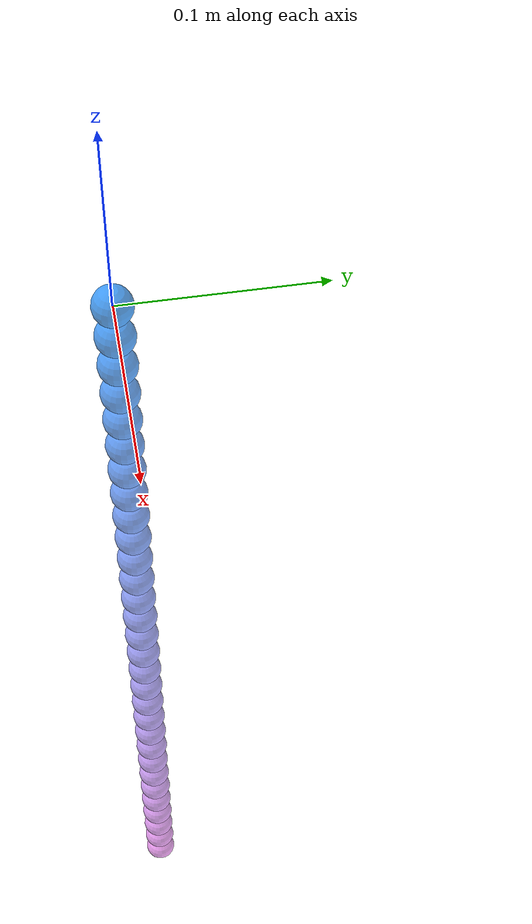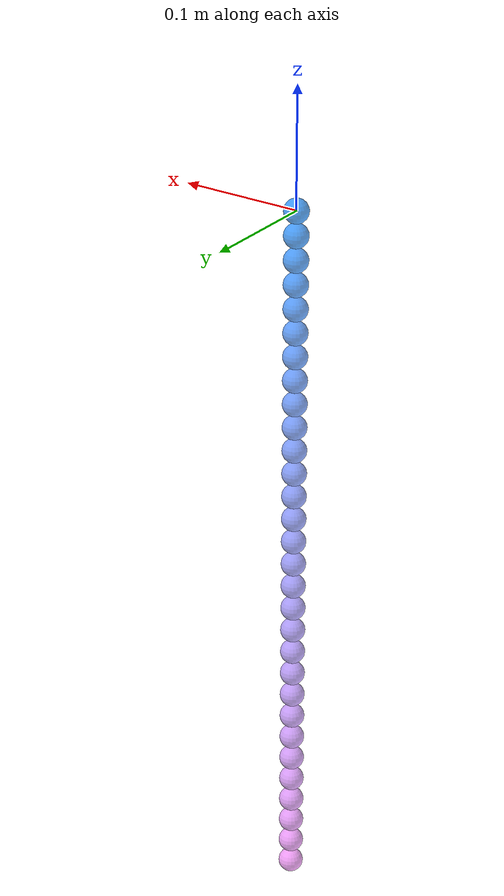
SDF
# This sdf file is auto-generated.
# Manual modification is not recommended.
<sdf version='1.6'>
  <model name='rope'>

  <link name='link_000'>
  <pose> 0 0 0.000000 0 0 0 </pose>
  <inertial>
     <mass> 0.001000 </mass>
     <inertia>
       <ixx>0.000000</ixx>
       <iyy>0.000000</iyy>
       <izz>0.000000</izz>
       <ixy>0.000000</ixy>
       <iyz>0.000000</iyz>
       <ixz>0.000000</ixz>
     </inertia>
  </inertial>

  <visual name='link_000_1'>
  <pose> 0 0 0 0 0 0 </pose>
  <geometry>
    <sphere>
       <radius>0.010000</radius>
    </sphere>
  </geometry>
  <material>
    <diffuse>0.000000 0.5 1.0 0.7</diffuse>
  </material>
  </visual>

  <collision name='collision_000'>
  <pose> 0 0 0 0 0 0 </pose>
  <geometry>
    <sphere>
       <radius>0.009000</radius>
    </sphere>
  </geometry>
  <surface>
    <friction>
      <ode>
        <mu>0.800000</mu>
        <mu2>0.800000</mu2>
      </ode>
    </friction>
  </surface>
  </collision>
  </link>

  <link name='link_001'>
  <pose> 0 0 -0.020000 0 0 0 </pose>
  <inertial>
     <mass> 0.001000 </mass>
     <inertia>
       <ixx>0.000000</ixx>
       <iyy>0.000000</iyy>
       <izz>0.000000</izz>
       <ixy>0.000000</ixy>
       <iyz>0.000000</iyz>
       <ixz>0.000000</ixz>
     </inertia>
  </inertial>

  <visual name='link_001_1'>
  <pose> 0 0 0 0 0 0 </pose>
  <geometry>
    <sphere>
       <radius>0.010000</radius>
    </sphere>
  </geometry>
  <material>
    <diffuse>0.033333 0.5 1.0 0.7</diffuse>
  </material>
  </visual>

  <collision name='collision_001'>
  <pose> 0 0 0 0 0 0 </pose>
  <geometry>
    <sphere>
       <radius>0.009000</radius>
    </sphere>
  </geometry>
  <surface>
    <friction>
      <ode>
        <mu>0.800000</mu>
        <mu2>0.800000</mu2>
      </ode>
    </friction>
  </surface>
  </collision>
  </link>

  <link name='link_002'>
  <pose> 0 0 -0.040000 0 0 0 </pose>
  <inertial>
     <mass> 0.001000 </mass>
     <inertia>
       <ixx>0.000000</ixx>
       <iyy>0.000000</iyy>
       <izz>0.000000</izz>
       <ixy>0.000000</ixy>
       <iyz>0.000000</iyz>
       <ixz>0.000000</ixz>
     </inertia>
  </inertial>

  <visual name='link_002_1'>
  <pose> 0 0 0 0 0 0 </pose>
  <geometry>
    <sphere>
       <radius>0.010000</radius>
    </sphere>
  </geometry>
  <material>
    <diffuse>0.066667 0.5 1.0 0.7</diffuse>
  </material>
  </visual>

  <collision name='collision_002'>
  <pose> 0 0 0 0 0 0 </pose>
  <geometry>
    <sphere>
       <radius>0.009000</radius>
    </sphere>
  </geometry>
  <surface>
    <friction>
      <ode>
        <mu>0.800000</mu>
        <mu2>0.800000</mu2>
      </ode>
    </friction>
  </surface>
  </collision>
  </link>

  <link name='link_003'>
  <pose> 0 0 -0.060000 0 0 0 </pose>
  <inertial>
     <mass> 0.001000 </mass>
     <inertia>
       <ixx>0.000000</ixx>
       <iyy>0.000000</iyy>
       <izz>0.000000</izz>
       <ixy>0.000000</ixy>
       <iyz>0.000000</iyz>
       <ixz>0.000000</ixz>
     </inertia>
  </inertial>

  <visual name='link_003_1'>
  <pose> 0 0 0 0 0 0 </pose>
  <geometry>
    <sphere>
       <radius>0.010000</radius>
    </sphere>
  </geometry>
  <material>
    <diffuse>0.100000 0.5 1.0 0.7</diffuse>
  </material>
  </visual>

  <collision name='collision_003'>
  <pose> 0 0 0 0 0 0 </pose>
  <geometry>
    <sphere>
       <radius>0.009000</radius>
    </sphere>
  </geometry>
  <surface>
    <friction>
      <ode>
        <mu>0.800000</mu>
        <mu2>0.800000</mu2>
      </ode>
    </friction>
  </surface>
  </collision>
  </link>

  <link name='link_004'>
  <pose> 0 0 -0.080000 0 0 0 </pose>
  <inertial>
     <mass> 0.001000 </mass>
     <inertia>
       <ixx>0.000000</ixx>
       <iyy>0.000000</iyy>
       <izz>0.000000</izz>
       <ixy>0.000000</ixy>
       <iyz>0.000000</iyz>
       <ixz>0.000000</ixz>
     </inertia>
  </inertial>

  <visual name='link_004_1'>
  <pose> 0 0 0 0 0 0 </pose>
  <geometry>
    <sphere>
       <radius>0.010000</radius>
    </sphere>
  </geometry>
  <material>
    <diffuse>0.133333 0.5 1.0 0.7</diffuse>
  </material>
  </visual>

  <collision name='collision_004'>
  <pose> 0 0 0 0 0 0 </pose>
  <geometry>
    <sphere>
       <radius>0.009000</radius>
    </sphere>
  </geometry>
  <surface>
    <friction>
      <ode>
        <mu>0.800000</mu>
        <mu2>0.800000</mu2>
      </ode>
    </friction>
  </surface>
  </collision>
  </link>

  <link name='link_005'>
  <pose> 0 0 -0.100000 0 0 0 </pose>
  <inertial>
     <mass> 0.001000 </mass>
     <inertia>
       <ixx>0.000000</ixx>
       <iyy>0.000000</iyy>
       <izz>0.000000</izz>
       <ixy>0.000000</ixy>
       <iyz>0.000000</iyz>
       <ixz>0.000000</ixz>
     </inertia>
  </inertial>

  <visual name='link_005_1'>
  <pose> 0 0 0 0 0 0 </pose>
  <geometry>
    <sphere>
       <radius>0.010000</radius>
    </sphere>
  </geometry>
  <material>
    <diffuse>0.166667 0.5 1.0 0.7</diffuse>
  </material>
  </visual>

  <collision name='collision_005'>
  <pose> 0 0 0 0 0 0 </pose>
  <geometry>
    <sphere>
       <radius>0.009000</radius>
    </sphere>
  </geometry>
  <surface>
    <friction>
      <ode>
        <mu>0.800000</mu>
        <mu2>0.800000</mu2>
      </ode>
    </friction>
  </surface>
  </collision>
  </link>

  <link name='link_006'>
  <pose> 0 0 -0.120000 0 0 0 </pose>
  <inertial>
     <mass> 0.001000 </mass>
     <inertia>
       <ixx>0.000000</ixx>
       <iyy>0.000000</iyy>
       <izz>0.000000</izz>
       <ixy>0.000000</ixy>
       <iyz>0.000000</iyz>
       <ixz>0.000000</ixz>
     </inertia>
  </inertial>

  <visual name='link_006_1'>
  <pose> 0 0 0 0 0 0 </pose>
  <geometry>
    <sphere>
       <radius>0.010000</radius>
    </sphere>
  </geometry>
  <material>
    <diffuse>0.200000 0.5 1.0 0.7</diffuse>
  </material>
  </visual>

  <collision name='collision_006'>
  <pose> 0 0 0 0 0 0 </pose>
  <geometry>
    <sphere>
       <radius>0.009000</radius>
    </sphere>
  </geometry>
  <surface>
    <friction>
      <ode>
        <mu>0.800000</mu>
        <mu2>0.800000</mu2>
      </ode>
    </friction>
  </surface>
  </collision>
  </link>

  <link name='link_007'>
  <pose> 0 0 -0.140000 0 0 0 </pose>
  <inertial>
     <mass> 0.001000 </mass>
     <inertia>
       <ixx>0.000000</ixx>
       <iyy>0.000000</iyy>
       <izz>0.000000</izz>
       <ixy>0.000000</ixy>
       <iyz>0.000000</iyz>
       <ixz>0.000000</ixz>
     </inertia>
  </inertial>

  <visual name='link_007_1'>
  <pose> 0 0 0 0 0 0 </pose>
  <geometry>
    <sphere>
       <radius>0.010000</radius>
    </sphere>
  </geometry>
  <material>
    <diffuse>0.233333 0.5 1.0 0.7</diffuse>
  </material>
  </visual>

  <collision name='collision_007'>
  <pose> 0 0 0 0 0 0 </pose>
  <geometry>
    <sphere>
       <radius>0.009000</radius>
    </sphere>
  </geometry>
  <surface>
    <friction>
      <ode>
        <mu>0.800000</mu>
        <mu2>0.800000</mu2>
      </ode>
    </friction>
  </surface>
  </collision>
  </link>

  <link name='link_008'>
  <pose> 0 0 -0.160000 0 0 0 </pose>
  <inertial>
     <mass> 0.001000 </mass>
     <inertia>
       <ixx>0.000000</ixx>
       <iyy>0.000000</iyy>
       <izz>0.000000</izz>
       <ixy>0.000000</ixy>
       <iyz>0.000000</iyz>
       <ixz>0.000000</ixz>
     </inertia>
  </inertial>

  <visual name='link_008_1'>
  <pose> 0 0 0 0 0 0 </pose>
  <geometry>
    <sphere>
       <radius>0.010000</radius>
    </sphere>
  </geometry>
  <material>
    <diffuse>0.266667 0.5 1.0 0.7</diffuse>
  </material>
  </visual>

  <collision name='collision_008'>
  <pose> 0 0 0 0 0 0 </pose>
  <geometry>
    <sphere>
       <radius>0.009000</radius>
    </sphere>
  </geometry>
  <surface>
    <friction>
      <ode>
        <mu>0.800000</mu>
        <mu2>0.800000</mu2>
      </ode>
    </friction>
  </surface>
  </collision>
  </link>

  <link name='link_009'>
  <pose> 0 0 -0.180000 0 0 0 </pose>
  <inertial>
     <mass> 0.001000 </mass>
     <inertia>
       <ixx>0.000000</ixx>
       <iyy>0.000000</iyy>
       <izz>0.000000</izz>
       <ixy>0.000000</ixy>
       <iyz>0.000000</iyz>
       <ixz>0.000000</ixz>
     </inertia>
  </inertial>

  <visual name='link_009_1'>
  <pose> 0 0 0 0 0 0 </pose>
  <geometry>
    <sphere>
       <radius>0.010000</radius>
    </sphere>
  </geometry>
  <material>
    <diffuse>0.300000 0.5 1.0 0.7</diffuse>
  </material>
  </visual>

  <collision name='collision_009'>
  <pose> 0 0 0 0 0 0 </pose>
  <geometry>
    <sphere>
       <radius>0.009000</radius>
    </sphere>
  </geometry>
  <surface>
    <friction>
      <ode>
        <mu>0.800000</mu>
        <mu2>0.800000</mu2>
      </ode>
    </friction>
  </surface>
  </collision>
  </link>

  <link name='link_010'>
  <pose> 0 0 -0.200000 0 0 0 </pose>
  <inertial>
     <mass> 0.001000 </mass>
     <inertia>
       <ixx>0.000000</ixx>
       <iyy>0.000000</iyy>
       <izz>0.000000</izz>
       <ixy>0.000000</ixy>
       <iyz>0.000000</iyz>
       <ixz>0.000000</ixz>
     </inertia>
  </inertial>

  <visual name='link_010_1'>
  <pose> 0 0 0 0 0 0 </pose>
  <geometry>
    <sphere>
       <radius>0.010000</radius>
    </sphere>
  </geometry>
  <material>
    <diffuse>0.333333 0.5 1.0 0.7</diffuse>
  </material>
  </visual>

  <collision name='collision_010'>
  <pose> 0 0 0 0 0 0 </pose>
  <geometry>
    <sphere>
       <radius>0.009000</radius>
    </sphere>
  </geometry>
  <surface>
    <friction>
      <ode>
        <mu>0.800000</mu>
        <mu2>0.800000</mu2>
      </ode>
    </friction>
  </surface>
  </collision>
  </link>

  <link name='link_011'>
  <pose> 0 0 -0.220000 0 0 0 </pose>
  <inertial>
     <mass> 0.001000 </mass>
     <inertia>
       <ixx>0.000000</ixx>
       <iyy>0.000000</iyy>
       <izz>0.000000</izz>
       <ixy>0.000000</ixy>
       <iyz>0.000000</iyz>
       <ixz>0.000000</ixz>
     </inertia>
  </inertial>

  <visual name='link_011_1'>
  <pose> 0 0 0 0 0 0 </pose>
  <geometry>
    <sphere>
       <radius>0.010000</radius>
    </sphere>
  </geometry>
  <material>
    <diffuse>0.366667 0.5 1.0 0.7</diffuse>
  </material>
  </visual>

  <collision name='collision_011'>
  <pose> 0 0 0 0 0 0 </pose>
  <geometry>
    <sphere>
       <radius>0.009000</radius>
    </sphere>
  </geometry>
  <surface>
    <friction>
      <ode>
        <mu>0.800000</mu>
        <mu2>0.800000</mu2>
      </ode>
    </friction>
  </surface>
  </collision>
  </link>

  <link name='link_012'>
  <pose> 0 0 -0.240000 0 0 0 </pose>
  <inertial>
     <mass> 0.001000 </mass>
     <inertia>
       <ixx>0.000000</ixx>
       <iyy>0.000000</iyy>
       <izz>0.000000</izz>
       <ixy>0.000000</ixy>
       <iyz>0.000000</iyz>
       <ixz>0.000000</ixz>
     </inertia>
  </inertial>

  <visual name='link_012_1'>
  <pose> 0 0 0 0 0 0 </pose>
  <geometry>
    <sphere>
       <radius>0.010000</radius>
    </sphere>
  </geometry>
  <material>
    <diffuse>0.400000 0.5 1.0 0.7</diffuse>
  </material>
  </visual>

  <collision name='collision_012'>
  <pose> 0 0 0 0 0 0 </pose>
  <geometry>
    <sphere>
       <radius>0.009000</radius>
    </sphere>
  </geometry>
  <surface>
    <friction>
      <ode>
        <mu>0.800000</mu>
        <mu2>0.800000</mu2>
      </ode>
    </friction>
  </surface>
  </collision>
  </link>

  <link name='link_013'>
  <pose> 0 0 -0.260000 0 0 0 </pose>
  <inertial>
     <mass> 0.001000 </mass>
     <inertia>
       <ixx>0.000000</ixx>
       <iyy>0.000000</iyy>
       <izz>0.000000</izz>
       <ixy>0.000000</ixy>
       <iyz>0.000000</iyz>
       <ixz>0.000000</ixz>
     </inertia>
  </inertial>

  <visual name='link_013_1'>
  <pose> 0 0 0 0 0 0 </pose>
  <geometry>
    <sphere>
       <radius>0.010000</radius>
    </sphere>
  </geometry>
  <material>
    <diffuse>0.433333 0.5 1.0 0.7</diffuse>
  </material>
  </visual>

  <collision name='collision_013'>
  <pose> 0 0 0 0 0 0 </pose>
  <geometry>
    <sphere>
       <radius>0.009000</radius>
    </sphere>
  </geometry>
  <surface>
    <friction>
      <ode>
        <mu>0.800000</mu>
        <mu2>0.800000</mu2>
      </ode>
    </friction>
  </surface>
  </collision>
  </link>

  <link name='link_014'>
  <pose> 0 0 -0.280000 0 0 0 </pose>
  <inertial>
     <mass> 0.001000 </mass>
     <inertia>
       <ixx>0.000000</ixx>
       <iyy>0.000000</iyy>
       <izz>0.000000</izz>
       <ixy>0.000000</ixy>
       <iyz>0.000000</iyz>
       <ixz>0.000000</ixz>
     </inertia>
  </inertial>

  <visual name='link_014_1'>
  <pose> 0 0 0 0 0 0 </pose>
  <geometry>
    <sphere>
       <radius>0.010000</radius>
    </sphere>
  </geometry>
  <material>
    <diffuse>0.466667 0.5 1.0 0.7</diffuse>
  </material>
  </visual>

  <collision name='collision_014'>
  <pose> 0 0 0 0 0 0 </pose>
  <geometry>
    <sphere>
       <radius>0.009000</radius>
    </sphere>
  </geometry>
  <surface>
    <friction>
      <ode>
        <mu>0.800000</mu>
        <mu2>0.800000</mu2>
      </ode>
    </friction>
  </surface>
  </collision>
  </link>

  <link name='link_015'>
  <pose> 0 0 -0.300000 0 0 0 </pose>
  <inertial>
     <mass> 0.001000 </mass>
     <inertia>
       <ixx>0.000000</ixx>
       <iyy>0.000000</iyy>
       <izz>0.000000</izz>
       <ixy>0.000000</ixy>
       <iyz>0.000000</iyz>
       <ixz>0.000000</ixz>
     </inertia>
  </inertial>

  <visual name='link_015_1'>
  <pose> 0 0 0 0 0 0 </pose>
  <geometry>
    <sphere>
       <radius>0.010000</radius>
    </sphere>
  </geometry>
  <material>
    <diffuse>0.500000 0.5 1.0 0.7</diffuse>
  </material>
  </visual>

  <collision name='collision_015'>
  <pose> 0 0 0 0 0 0 </pose>
  <geometry>
    <sphere>
       <radius>0.009000</radius>
    </sphere>
  </geometry>
  <surface>
    <friction>
      <ode>
        <mu>0.800000</mu>
        <mu2>0.800000</mu2>
      </ode>
    </friction>
  </surface>
  </collision>
  </link>

  <link name='link_016'>
  <pose> 0 0 -0.320000 0 0 0 </pose>
  <inertial>
     <mass> 0.001000 </mass>
     <inertia>
       <ixx>0.000000</ixx>
       <iyy>0.000000</iyy>
       <izz>0.000000</izz>
       <ixy>0.000000</ixy>
       <iyz>0.000000</iyz>
       <ixz>0.000000</ixz>
     </inertia>
  </inertial>

  <visual name='link_016_1'>
  <pose> 0 0 0 0 0 0 </pose>
  <geometry>
    <sphere>
       <radius>0.010000</radius>
    </sphere>
  </geometry>
  <material>
    <diffuse>0.533333 0.5 1.0 0.7</diffuse>
  </material>
  </visual>

  <collision name='collision_016'>
  <pose> 0 0 0 0 0 0 </pose>
  <geometry>
    <sphere>
       <radius>0.009000</radius>
    </sphere>
  </geometry>
  <surface>
    <friction>
      <ode>
        <mu>0.800000</mu>
        <mu2>0.800000</mu2>
      </ode>
    </friction>
  </surface>
  </collision>
  </link>

  <link name='link_017'>
  <pose> 0 0 -0.340000 0 0 0 </pose>
  <inertial>
     <mass> 0.001000 </mass>
     <inertia>
       <ixx>0.000000</ixx>
       <iyy>0.000000</iyy>
       <izz>0.000000</izz>
       <ixy>0.000000</ixy>
       <iyz>0.000000</iyz>
       <ixz>0.000000</ixz>
     </inertia>
  </inertial>

  <visual name='link_017_1'>
  <pose> 0 0 0 0 0 0 </pose>
  <geometry>
    <sphere>
       <radius>0.010000</radius>
    </sphere>
  </geometry>
  <material>
    <diffuse>0.566667 0.5 1.0 0.7</diffuse>
  </material>
  </visual>

  <collision name='collision_017'>
  <pose> 0 0 0 0 0 0 </pose>
  <geometry>
    <sphere>
       <radius>0.009000</radius>
    </sphere>
  </geometry>
  <surface>
    <friction>
      <ode>
        <mu>0.800000</mu>
        <mu2>0.800000</mu2>
      </ode>
    </friction>
  </surface>
  </collision>
  </link>

  <link name='link_018'>
  <pose> 0 0 -0.360000 0 0 0 </pose>
  <inertial>
     <mass> 0.001000 </mass>
     <inertia>
       <ixx>0.000000</ixx>
       <iyy>0.000000</iyy>
       <izz>0.000000</izz>
       <ixy>0.000000</ixy>
       <iyz>0.000000</iyz>
       <ixz>0.000000</ixz>
     </inertia>
  </inertial>

  <visual name='link_018_1'>
  <pose> 0 0 0 0 0 0 </pose>
  <geometry>
    <sphere>
       <radius>0.010000</radius>
    </sphere>
  </geometry>
  <material>
    <diffuse>0.600000 0.5 1.0 0.7</diffuse>
  </material>
  </visual>

  <collision name='collision_018'>
  <pose> 0 0 0 0 0 0 </pose>
  <geometry>
    <sphere>
       <radius>0.009000</radius>
    </sphere>
  </geometry>
  <surface>
    <friction>
      <ode>
        <mu>0.800000</mu>
        <mu2>0.800000</mu2>
      </ode>
    </friction>
  </surface>
  </collision>
  </link>

  <link name='link_019'>
  <pose> 0 0 -0.380000 0 0 0 </pose>
  <inertial>
     <mass> 0.001000 </mass>
     <inertia>
       <ixx>0.000000</ixx>
       <iyy>0.000000</iyy>
       <izz>0.000000</izz>
       <ixy>0.000000</ixy>
       <iyz>0.000000</iyz>
       <ixz>0.000000</ixz>
     </inertia>
  </inertial>

  <visual name='link_019_1'>
  <pose> 0 0 0 0 0 0 </pose>
  <geometry>
    <sphere>
       <radius>0.010000</radius>
    </sphere>
  </geometry>
  <material>
    <diffuse>0.633333 0.5 1.0 0.7</diffuse>
  </material>
  </visual>

  <collision name='collision_019'>
  <pose> 0 0 0 0 0 0 </pose>
  <geometry>
    <sphere>
       <radius>0.009000</radius>
    </sphere>
  </geometry>
  <surface>
    <friction>
      <ode>
        <mu>0.800000</mu>
        <mu2>0.800000</mu2>
      </ode>
    </friction>
  </surface>
  </collision>
  </link>

  <link name='link_020'>
  <pose> 0 0 -0.400000 0 0 0 </pose>
  <inertial>
     <mass> 0.001000 </mass>
     <inertia>
       <ixx>0.000000</ixx>
       <iyy>0.000000</iyy>
       <izz>0.000000</izz>
       <ixy>0.000000</ixy>
       <iyz>0.000000</iyz>
       <ixz>0.000000</ixz>
     </inertia>
  </inertial>

  <visual name='link_020_1'>
  <pose> 0 0 0 0 0 0 </pose>
  <geometry>
    <sphere>
       <radius>0.010000</radius>
    </sphere>
  </geometry>
  <material>
    <diffuse>0.666667 0.5 1.0 0.7</diffuse>
  </material>
  </visual>

  <collision name='collision_020'>
  <pose> 0 0 0 0 0 0 </pose>
  <geometry>
    <sphere>
       <radius>0.009000</radius>
    </sphere>
  </geometry>
  <surface>
    <friction>
      <ode>
        <mu>0.800000</mu>
        <mu2>0.800000</mu2>
      </ode>
    </friction>
  </surface>
  </collision>
  </link>

  <link name='link_021'>
  <pose> 0 0 -0.420000 0 0 0 </pose>
  <inertial>
     <mass> 0.001000 </mass>
     <inertia>
       <ixx>0.000000</ixx>
       <iyy>0.000000</iyy>
       <izz>0.000000</izz>
       <ixy>0.000000</ixy>
       <iyz>0.000000</iyz>
       <ixz>0.000000</ixz>
     </inertia>
  </inertial>

  <visual name='link_021_1'>
  <pose> 0 0 0 0 0 0 </pose>
  <geometry>
    <sphere>
       <radius>0.010000</radius>
    </sphere>
  </geometry>
  <material>
    <diffuse>0.700000 0.5 1.0 0.7</diffuse>
  </material>
  </visual>

  <collision name='collision_021'>
  <pose> 0 0 0 0 0 0 </pose>
  <geometry>
    <sphere>
       <radius>0.009000</radius>
    </sphere>
  </geometry>
  <surface>
    <friction>
      <ode>
        <mu>0.800000</mu>
        <mu2>0.800000</mu2>
      </ode>
    </friction>
  </surface>
  </collision>
  </link>

  <link name='link_022'>
  <pose> 0 0 -0.440000 0 0 0 </pose>
  <inertial>
     <mass> 0.001000 </mass>
     <inertia>
       <ixx>0.000000</ixx>
       <iyy>0.000000</iyy>
       <izz>0.000000</izz>
       <ixy>0.000000</ixy>
       <iyz>0.000000</iyz>
       <ixz>0.000000</ixz>
     </inertia>
  </inertial>

  <visual name='link_022_1'>
  <pose> 0 0 0 0 0 0 </pose>
  <geometry>
    <sphere>
       <radius>0.010000</radius>
    </sphere>
  </geometry>
  <material>
    <diffuse>0.733333 0.5 1.0 0.7</diffuse>
  </material>
  </visual>

  <collision name='collision_022'>
  <pose> 0 0 0 0 0 0 </pose>
  <geometry>
    <sphere>
       <radius>0.009000</radius>
    </sphere>
  </geometry>
  <surface>
    <friction>
      <ode>
        <mu>0.800000</mu>
        <mu2>0.800000</mu2>
      </ode>
    </friction>
  </surface>
  </collision>
  </link>

  <link name='link_023'>
  <pose> 0 0 -0.460000 0 0 0 </pose>
  <inertial>
     <mass> 0.001000 </mass>
     <inertia>
       <ixx>0.000000</ixx>
       <iyy>0.000000</iyy>
       <izz>0.000000</izz>
       <ixy>0.000000</ixy>
       <iyz>0.000000</iyz>
       <ixz>0.000000</ixz>
     </inertia>
  </inertial>

  <visual name='link_023_1'>
  <pose> 0 0 0 0 0 0 </pose>
  <geometry>
    <sphere>
       <radius>0.010000</radius>
    </sphere>
  </geometry>
  <material>
    <diffuse>0.766667 0.5 1.0 0.7</diffuse>
  </material>
  </visual>

  <collision name='collision_023'>
  <pose> 0 0 0 0 0 0 </pose>
  <geometry>
    <sphere>
       <radius>0.009000</radius>
    </sphere>
  </geometry>
  <surface>
    <friction>
      <ode>
        <mu>0.800000</mu>
        <mu2>0.800000</mu2>
      </ode>
    </friction>
  </surface>
  </collision>
  </link>

  <link name='link_024'>
  <pose> 0 0 -0.480000 0 0 0 </pose>
  <inertial>
     <mass> 0.001000 </mass>
     <inertia>
       <ixx>0.000000</ixx>
       <iyy>0.000000</iyy>
       <izz>0.000000</izz>
       <ixy>0.000000</ixy>
       <iyz>0.000000</iyz>
       <ixz>0.000000</ixz>
     </inertia>
  </inertial>

  <visual name='link_024_1'>
  <pose> 0 0 0 0 0 0 </pose>
  <geometry>
    <sphere>
       <radius>0.010000</radius>
    </sphere>
  </geometry>
  <material>
    <diffuse>0.800000 0.5 1.0 0.7</diffuse>
  </material>
  </visual>

  <collision name='collision_024'>
  <pose> 0 0 0 0 0 0 </pose>
  <geometry>
    <sphere>
       <radius>0.009000</radius>
    </sphere>
  </geometry>
  <surface>
    <friction>
      <ode>
        <mu>0.800000</mu>
        <mu2>0.800000</mu2>
      </ode>
    </friction>
  </surface>
  </collision>
  </link>

  <link name='link_025'>
  <pose> 0 0 -0.500000 0 0 0 </pose>
  <inertial>
     <mass> 0.001000 </mass>
     <inertia>
       <ixx>0.000000</ixx>
       <iyy>0.000000</iyy>
       <izz>0.000000</izz>
       <ixy>0.000000</ixy>
       <iyz>0.000000</iyz>
       <ixz>0.000000</ixz>
     </inertia>
  </inertial>

  <visual name='link_025_1'>
  <pose> 0 0 0 0 0 0 </pose>
  <geometry>
    <sphere>
       <radius>0.010000</radius>
    </sphere>
  </geometry>
  <material>
    <diffuse>0.833333 0.5 1.0 0.7</diffuse>
  </material>
  </visual>

  <collision name='collision_025'>
  <pose> 0 0 0 0 0 0 </pose>
  <geometry>
    <sphere>
       <radius>0.009000</radius>
    </sphere>
  </geometry>
  <surface>
    <friction>
      <ode>
        <mu>0.800000</mu>
        <mu2>0.800000</mu2>
      </ode>
    </friction>
  </surface>
  </collision>
  </link>

  <link name='link_026'>
  <pose> 0 0 -0.520000 0 0 0 </pose>
  <inertial>
     <mass> 0.001000 </mass>
     <inertia>
       <ixx>0.000000</ixx>
       <iyy>0.000000</iyy>
       <izz>0.000000</izz>
       <ixy>0.000000</ixy>
       <iyz>0.000000</iyz>
       <ixz>0.000000</ixz>
     </inertia>
  </inertial>

  <visual name='link_026_1'>
  <pose> 0 0 0 0 0 0 </pose>
  <geometry>
    <sphere>
       <radius>0.010000</radius>
    </sphere>
  </geometry>
  <material>
    <diffuse>0.866667 0.5 1.0 0.7</diffuse>
  </material>
  </visual>

  <collision name='collision_026'>
  <pose> 0 0 0 0 0 0 </pose>
  <geometry>
    <sphere>
       <radius>0.009000</radius>
    </sphere>
  </geometry>
  <surface>
    <friction>
      <ode>
        <mu>0.800000</mu>
        <mu2>0.800000</mu2>
      </ode>
    </friction>
  </surface>
  </collision>
  </link>

  <link name='link_027'>
  <pose> 0 0 -0.540000 0 0 0 </pose>
  <inertial>
     <mass> 0.001000 </mass>
     <inertia>
       <ixx>0.000000</ixx>
       <iyy>0.000000</iyy>
       <izz>0.000000</izz>
       <ixy>0.000000</ixy>
       <iyz>0.000000</iyz>
       <ixz>0.000000</ixz>
     </inertia>
  </inertial>

  <visual name='link_027_1'>
  <pose> 0 0 0 0 0 0 </pose>
  <geometry>
    <sphere>
       <radius>0.010000</radius>
    </sphere>
  </geometry>
  <material>
    <diffuse>0.900000 0.5 1.0 0.7</diffuse>
  </material>
  </visual>

  <collision name='collision_027'>
  <pose> 0 0 0 0 0 0 </pose>
  <geometry>
    <sphere>
       <radius>0.009000</radius>
    </sphere>
  </geometry>
  <surface>
    <friction>
      <ode>
        <mu>0.800000</mu>
        <mu2>0.800000</mu2>
      </ode>
    </friction>
  </surface>
  </collision>
  </link>

  <link name='link_028'>
  <pose> 0 0 -0.560000 0 0 0 </pose>
  <inertial>
     <mass> 0.001000 </mass>
     <inertia>
       <ixx>0.000000</ixx>
       <iyy>0.000000</iyy>
       <izz>0.000000</izz>
       <ixy>0.000000</ixy>
       <iyz>0.000000</iyz>
       <ixz>0.000000</ixz>
     </inertia>
  </inertial>

  <visual name='link_028_1'>
  <pose> 0 0 0 0 0 0 </pose>
  <geometry>
    <sphere>
       <radius>0.010000</radius>
    </sphere>
  </geometry>
  <material>
    <diffuse>0.933333 0.5 1.0 0.7</diffuse>
  </material>
  </visual>

  <collision name='collision_028'>
  <pose> 0 0 0 0 0 0 </pose>
  <geometry>
    <sphere>
       <radius>0.009000</radius>
    </sphere>
  </geometry>
  <surface>
    <friction>
      <ode>
        <mu>0.800000</mu>
        <mu2>0.800000</mu2>
      </ode>
    </friction>
  </surface>
  </collision>
  </link>

  <link name='link_029'>
  <pose> 0 0 -0.580000 0 0 0 </pose>
  <inertial>
     <mass> 0.001000 </mass>
     <inertia>
       <ixx>0.000000</ixx>
       <iyy>0.000000</iyy>
       <izz>0.000000</izz>
       <ixy>0.000000</ixy>
       <iyz>0.000000</iyz>
       <ixz>0.000000</ixz>
     </inertia>
  </inertial>

  <visual name='link_029_1'>
  <pose> 0 0 0 0 0 0 </pose>
  <geometry>
    <sphere>
       <radius>0.010000</radius>
    </sphere>
  </geometry>
  <material>
    <diffuse>0.966667 0.5 1.0 0.7</diffuse>
  </material>
  </visual>

  <collision name='collision_029'>
  <pose> 0 0 0 0 0 0 </pose>
  <geometry>
    <sphere>
       <radius>0.009000</radius>
    </sphere>
  </geometry>
  <surface>
    <friction>
      <ode>
        <mu>0.800000</mu>
        <mu2>0.800000</mu2>
      </ode>
    </friction>
  </surface>
  </collision>
  </link>

  <joint name='joint_weld' type='fixed'>
      <parent>world</parent>
      <child>link_000</child>
  </joint>

  <joint name='joint_000' type='revolute'>
    <parent>link_000</parent>
    <child>link_001</child>
    <pose> 0 0 0.020000 0 0 0 </pose>    <axis>
      <xyz expressed_in='__model__'> 1 0 0 </xyz>
    </axis>
  </joint>

  <joint name='joint_001' type='revolute'>
    <parent>link_001</parent>
    <child>link_002</child>
    <pose> 0 0 0.020000 0 0 0 </pose>    <axis>
      <xyz expressed_in='__model__'> 1 0 0 </xyz>
    </axis>
  </joint>

  <joint name='joint_002' type='revolute'>
    <parent>link_002</parent>
    <child>link_003</child>
    <pose> 0 0 0.020000 0 0 0 </pose>    <axis>
      <xyz expressed_in='__model__'> 1 0 0 </xyz>
    </axis>
  </joint>

  <joint name='joint_003' type='revolute'>
    <parent>link_003</parent>
    <child>link_004</child>
    <pose> 0 0 0.020000 0 0 0 </pose>    <axis>
      <xyz expressed_in='__model__'> 1 0 0 </xyz>
    </axis>
  </joint>

  <joint name='joint_004' type='revolute'>
    <parent>link_004</parent>
    <child>link_005</child>
    <pose> 0 0 0.020000 0 0 0 </pose>    <axis>
      <xyz expressed_in='__model__'> 1 0 0 </xyz>
    </axis>
  </joint>

  <joint name='joint_005' type='revolute'>
    <parent>link_005</parent>
    <child>link_006</child>
    <pose> 0 0 0.020000 0 0 0 </pose>    <axis>
      <xyz expressed_in='__model__'> 1 0 0 </xyz>
    </axis>
  </joint>

  <joint name='joint_006' type='revolute'>
    <parent>link_006</parent>
    <child>link_007</child>
    <pose> 0 0 0.020000 0 0 0 </pose>    <axis>
      <xyz expressed_in='__model__'> 1 0 0 </xyz>
    </axis>
  </joint>

  <joint name='joint_007' type='revolute'>
    <parent>link_007</parent>
    <child>link_008</child>
    <pose> 0 0 0.020000 0 0 0 </pose>    <axis>
      <xyz expressed_in='__model__'> 1 0 0 </xyz>
    </axis>
  </joint>

  <joint name='joint_008' type='revolute'>
    <parent>link_008</parent>
    <child>link_009</child>
    <pose> 0 0 0.020000 0 0 0 </pose>    <axis>
      <xyz expressed_in='__model__'> 1 0 0 </xyz>
    </axis>
  </joint>

  <joint name='joint_009' type='revolute'>
    <parent>link_009</parent>
    <child>link_010</child>
    <pose> 0 0 0.020000 0 0 0 </pose>    <axis>
      <xyz expressed_in='__model__'> 1 0 0 </xyz>
    </axis>
  </joint>

  <joint name='joint_010' type='revolute'>
    <parent>link_010</parent>
    <child>link_011</child>
    <pose> 0 0 0.020000 0 0 0 </pose>    <axis>
      <xyz expressed_in='__model__'> 1 0 0 </xyz>
    </axis>
  </joint>

  <joint name='joint_011' type='revolute'>
    <parent>link_011</parent>
    <child>link_012</child>
    <pose> 0 0 0.020000 0 0 0 </pose>    <axis>
      <xyz expressed_in='__model__'> 1 0 0 </xyz>
    </axis>
  </joint>

  <joint name='joint_012' type='revolute'>
    <parent>link_012</parent>
    <child>link_013</child>
    <pose> 0 0 0.020000 0 0 0 </pose>    <axis>
      <xyz expressed_in='__model__'> 1 0 0 </xyz>
    </axis>
  </joint>

  <joint name='joint_013' type='revolute'>
    <parent>link_013</parent>
    <child>link_014</child>
    <pose> 0 0 0.020000 0 0 0 </pose>    <axis>
      <xyz expressed_in='__model__'> 1 0 0 </xyz>
    </axis>
  </joint>

  <joint name='joint_014' type='revolute'>
    <parent>link_014</parent>
    <child>link_015</child>
    <pose> 0 0 0.020000 0 0 0 </pose>    <axis>
      <xyz expressed_in='__model__'> 1 0 0 </xyz>
    </axis>
  </joint>

  <joint name='joint_015' type='revolute'>
    <parent>link_015</parent>
    <child>link_016</child>
    <pose> 0 0 0.020000 0 0 0 </pose>    <axis>
      <xyz expressed_in='__model__'> 1 0 0 </xyz>
    </axis>
  </joint>

  <joint name='joint_016' type='revolute'>
    <parent>link_016</parent>
    <child>link_017</child>
    <pose> 0 0 0.020000 0 0 0 </pose>    <axis>
      <xyz expressed_in='__model__'> 1 0 0 </xyz>
    </axis>
  </joint>

  <joint name='joint_017' type='revolute'>
    <parent>link_017</parent>
    <child>link_018</child>
    <pose> 0 0 0.020000 0 0 0 </pose>    <axis>
      <xyz expressed_in='__model__'> 1 0 0 </xyz>
    </axis>
  </joint>

  <joint name='joint_018' type='revolute'>
    <parent>link_018</parent>
    <child>link_019</child>
    <pose> 0 0 0.020000 0 0 0 </pose>    <axis>
      <xyz expressed_in='__model__'> 1 0 0 </xyz>
    </axis>
  </joint>

  <joint name='joint_019' type='revolute'>
    <parent>link_019</parent>
    <child>link_020</child>
    <pose> 0 0 0.020000 0 0 0 </pose>    <axis>
      <xyz expressed_in='__model__'> 1 0 0 </xyz>
    </axis>
  </joint>

  <joint name='joint_020' type='revolute'>
    <parent>link_020</parent>
    <child>link_021</child>
    <pose> 0 0 0.020000 0 0 0 </pose>    <axis>
      <xyz expressed_in='__model__'> 1 0 0 </xyz>
    </axis>
  </joint>

  <joint name='joint_021' type='revolute'>
    <parent>link_021</parent>
    <child>link_022</child>
    <pose> 0 0 0.020000 0 0 0 </pose>    <axis>
      <xyz expressed_in='__model__'> 1 0 0 </xyz>
    </axis>
  </joint>

  <joint name='joint_022' type='revolute'>
    <parent>link_022</parent>
    <child>link_023</child>
    <pose> 0 0 0.020000 0 0 0 </pose>    <axis>
      <xyz expressed_in='__model__'> 1 0 0 </xyz>
    </axis>
  </joint>

  <joint name='joint_023' type='revolute'>
    <parent>link_023</parent>
    <child>link_024</child>
    <pose> 0 0 0.020000 0 0 0 </pose>    <axis>
      <xyz expressed_in='__model__'> 1 0 0 </xyz>
    </axis>
  </joint>

  <joint name='joint_024' type='revolute'>
    <parent>link_024</parent>
    <child>link_025</child>
    <pose> 0 0 0.020000 0 0 0 </pose>    <axis>
      <xyz expressed_in='__model__'> 1 0 0 </xyz>
    </axis>
  </joint>

  <joint name='joint_025' type='revolute'>
    <parent>link_025</parent>
    <child>link_026</child>
    <pose> 0 0 0.020000 0 0 0 </pose>    <axis>
      <xyz expressed_in='__model__'> 1 0 0 </xyz>
    </axis>
  </joint>

  <joint name='joint_026' type='revolute'>
    <parent>link_026</parent>
    <child>link_027</child>
    <pose> 0 0 0.020000 0 0 0 </pose>    <axis>
      <xyz expressed_in='__model__'> 1 0 0 </xyz>
    </axis>
  </joint>

  <joint name='joint_027' type='revolute'>
    <parent>link_027</parent>
    <child>link_028</child>
    <pose> 0 0 0.020000 0 0 0 </pose>    <axis>
      <xyz expressed_in='__model__'> 1 0 0 </xyz>
    </axis>
  </joint>

  <joint name='joint_028' type='revolute'>
    <parent>link_028</parent>
    <child>link_029</child>
    <pose> 0 0 0.020000 0 0 0 </pose>    <axis>
      <xyz expressed_in='__model__'> 1 0 0 </xyz>
    </axis>
  </joint>

  </model>
</sdf>
